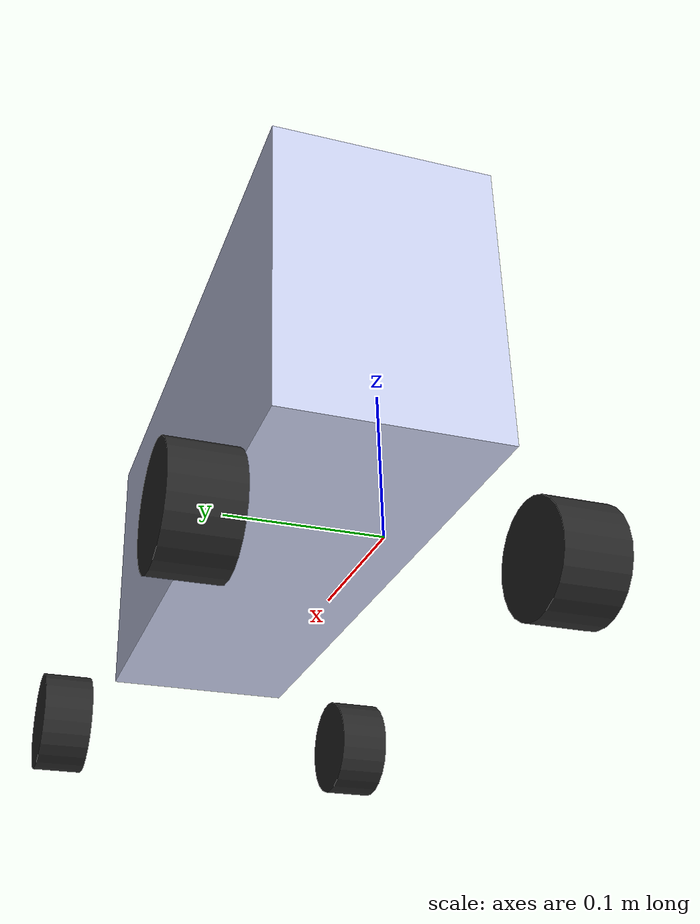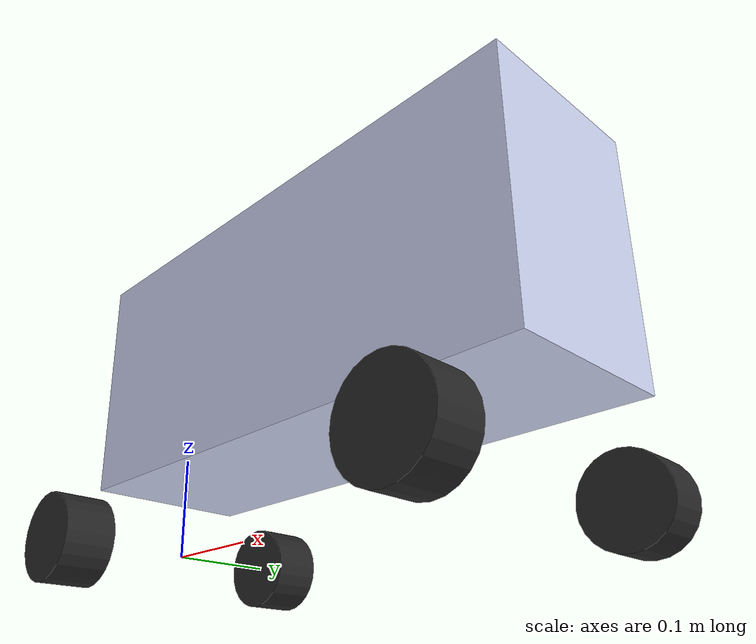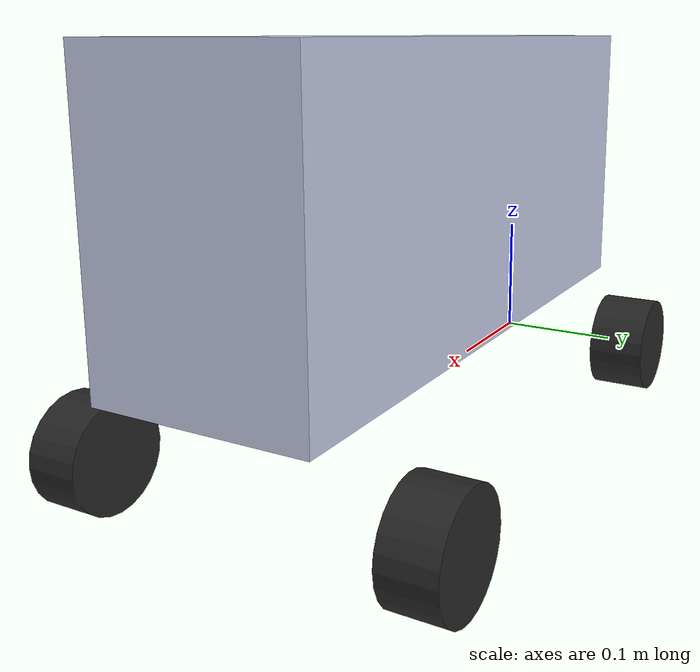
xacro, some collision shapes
<?xml version="1.0" encoding="utf-8"?>
<!-- This URDF was automatically created by SolidWorks to URDF Exporter and then extended for ROS/Gazebo simulation. -->
<robot name="R1" xmlns:xacro="http://www.ros.org/wiki/xacro">
  <xacro:arg name="controllers_file" default="$(find zebrat)/config/r1_ros2_control.yaml" />
  <link name="base_link">
    <inertial>
      <origin xyz="0.21879978611665 0.0 0.12" rpy="0 0 0" />
      <mass value="38.0603057004842" />
      <inertia
        ixx="0.70"
        ixy="0.0"
        ixz="0.0"
        iyy="1.10"
        iyz="0.0"
        izz="0.95" />
    </inertial>
    <visual>
      <origin xyz="0.19879978611665 0 0" rpy="0 0 3.14159265359" />
      <geometry>
        <mesh filename="package://zebrat/urdf/meshes/base_link.stl" />
      </geometry>
      <material name="">
        <color rgba="0.792156862745098 0.819607843137255 0.933333333333333 1" />
      </material>
    </visual>
    <collision>
      <origin xyz="0.21879978611665 0 0.17" rpy="0 0 0" />
      <geometry>
        <box size="0.50 0.16 0.22" />
      </geometry>
    </collision>
  </link>

  <link name="front_left_steering_link">
    <inertial>
      <origin xyz="0 0 -0.020375" rpy="0 0 0" />
      <mass value="0.30" />
      <inertia ixx="2e-4" ixy="0" ixz="0" iyy="2e-4" iyz="0" izz="2e-4" />
    </inertial>
  </link>

  <link name="front_right_steering_link">
    <inertial>
      <origin xyz="0 0 -0.020375" rpy="0 0 0" />
      <mass value="0.30" />
      <inertia ixx="2e-4" ixy="0" ixz="0" iyy="2e-4" iyz="0" izz="2e-4" />
    </inertial>
  </link>

  <link name="Empty_Link1">
    <inertial>
      <origin xyz="0 0 0" rpy="0 0 0" />
      <mass value="0.102007563940439" />
      <inertia
        ixx="6.03197633111551E-05"
        ixy="-1.09650777535302E-10"
        ixz="7.71132214702415E-10"
        iyy="9.37857965039355E-05"
        iyz="9.81331506021422E-10"
        izz="6.03194335121187E-05" />
    </inertial>
    <visual>
      <origin xyz="0 0 0" rpy="1.57079632679 0 0" />
      <geometry>
        <cylinder radius="0.04075" length="0.040" />
      </geometry>
      <material name="">
        <color rgba="0.152941176470588 0.152941176470588 0.152941176470588 1" />
      </material>
    </visual>
    <collision>
      <origin xyz="0 0 0" rpy="1.57079632679 0 0" />
      <geometry>
        <cylinder radius="0.04075" length="0.040" />
      </geometry>
    </collision>
  </link>

  <joint name="front_left_steering_joint" type="revolute">
    <origin xyz="0.418927695976663 0.132310316479216 0.04075" rpy="0 0 0" />
    <parent link="base_link" />
    <child link="front_left_steering_link" />
    <axis xyz="0 0 1" />
    <limit lower="-0.6" upper="0.6" effort="30" velocity="4" />
    <dynamics damping="3.0" friction="0.2" />
  </joint>

  <joint name="front_left_wheel_joint" type="continuous">
    <origin xyz="0 0 -0.04075" rpy="0 0 0" />
    <parent link="front_left_steering_link" />
    <child link="Empty_Link1" />
    <axis xyz="0 1 0" />
    <limit effort="30" velocity="60" />
    <dynamics damping="0.02" friction="0.0" />
  </joint>

  <link name="Empty_Link2">
    <inertial>
      <origin xyz="0 0 0" rpy="0 0 0" />
      <mass value="0.102007476255524" />
      <inertia
        ixx="6.03196775650763E-05"
        ixy="-1.30454716001587E-10"
        ixz="8.2130239199344E-10"
        iyy="9.37857280988688E-05"
        iyz="9.77509097955072E-10"
        izz="6.03194264639649E-05" />
    </inertial>
    <visual>
      <origin xyz="0 0 0" rpy="1.57079632679 0 0" />
      <geometry>
        <cylinder radius="0.04075" length="0.040" />
      </geometry>
      <material name="">
        <color rgba="0.152941176470588 0.152941176470588 0.152941176470588 1" />
      </material>
    </visual>
    <collision>
      <origin xyz="0 0 0" rpy="1.57079632679 0 0" />
      <geometry>
        <cylinder radius="0.04075" length="0.040" />
      </geometry>
    </collision>
  </link>

  <joint name="front_right_steering_joint" type="revolute">
    <origin xyz="0.418927695976663 -0.132310316479216 0.04075" rpy="0 0 0" />
    <parent link="base_link" />
    <child link="front_right_steering_link" />
    <axis xyz="0 0 1" />
    <limit lower="-0.6" upper="0.6" effort="30" velocity="4" />
    <dynamics damping="3.0" friction="0.2" />
  </joint>

  <joint name="front_right_wheel_joint" type="continuous">
    <origin xyz="0 0 -0.04075" rpy="0 0 0" />
    <parent link="front_right_steering_link" />
    <child link="Empty_Link2" />
    <axis xyz="0 -1 0" />
    <limit effort="30" velocity="60" />
    <dynamics damping="0.02" friction="0.0" />
  </joint>

  <link name="Empty_Link3">
    <inertial>
      <origin xyz="3.76217621722574E-07 -0.00343116064614217 1.77734477486638E-07" rpy="0 0 0" />
      <mass value="0.130385211409052" />
      <inertia
        ixx="7.86812106003073E-05"
        ixy="5.53858346756479E-11"
        ixz="9.23581794342341E-08"
        iyy="0.000108048071855382"
        iyz="-1.15152881530515E-10"
        izz="7.82862361574103E-05" />
    </inertial>
    <visual>
      <origin xyz="0 -0.0010 0" rpy="1.57079632679 0 0" />
      <geometry>
        <cylinder radius="0.04075" length="0.0465" />
      </geometry>
      <material name="">
        <color rgba="0.152941176470588 0.152941176470588 0.152941176470588 1" />
      </material>
    </visual>
    <collision>
      <origin xyz="0 -0.0010 0" rpy="1.57079632679 0 0" />
      <geometry>
        <cylinder radius="0.04075" length="0.0465" />
      </geometry>
    </collision>
  </link>

  <joint name="rear_right_wheel_joint" type="continuous">
    <origin xyz="0.0 -0.120910316479219 0.0" rpy="0 0 0" />
    <parent link="base_link" />
    <child link="Empty_Link3" />
    <axis xyz="0 -1 0" />
    <limit effort="20" velocity="20" />
    <dynamics damping="0.02" friction="0.0" />
  </joint>

  <link name="Empty_Link4">
    <inertial>
      <origin xyz="3.64091904681008E-07 0.000181544843160394 3.71723492477368E-07" rpy="0 0 0" />
      <mass value="0.130386181839137" />
      <inertia
        ixx="7.86817593166718E-05"
        ixy="7.73070482159629E-11"
        ixz="9.25265700656962E-08"
        iyy="0.00010804820646223"
        iyz="-1.16088106414147E-10"
        izz="7.82861601090754E-05" />
    </inertial>
    <visual>
      <origin xyz="0 -0.0020 0" rpy="1.57079632679 0 0" />
      <geometry>
        <cylinder radius="0.04075" length="0.0465" />
      </geometry>
      <material name="">
        <color rgba="0.152941176470588 0.152941176470588 0.152941176470588 1" />
      </material>
    </visual>
    <collision>
      <origin xyz="0 -0.0020 0" rpy="1.57079632679 0 0" />
      <geometry>
        <cylinder radius="0.04075" length="0.0465" />
      </geometry>
    </collision>
  </link>

  <joint name="rear_left_wheel_joint" type="continuous">
    <origin xyz="0.0 0.120910316479219 0.0" rpy="0 0 0" />
    <parent link="base_link" />
    <child link="Empty_Link4" />
    <axis xyz="0 1 0" />
    <limit effort="20" velocity="20" />
    <dynamics damping="0.02" friction="0.0" />
  </joint>

  <link name="imu_link">
    <inertial>
      <origin xyz="0 0 0" rpy="0 0 0" />
      <mass value="0.01" />
      <inertia ixx="1e-5" ixy="0" ixz="0" iyy="1e-5" iyz="0" izz="1e-5" />
    </inertial>
  </link>

  <joint name="imu_joint" type="fixed">
    <origin xyz="0.21879978611665 0 0.22" rpy="0 0 0" />
    <parent link="base_link" />
    <child link="imu_link" />
  </joint>

  <link name="laser_link">
    <inertial>
      <origin xyz="0 0 0" rpy="0 0 0" />
      <mass value="0.05" />
      <inertia ixx="2e-5" ixy="0" ixz="0" iyy="2e-5" iyz="0" izz="2e-5" />
    </inertial>
  </link>

  <joint name="laser_joint" type="fixed">
    <origin xyz="0.62 0 0.55" rpy="0 0 0" />
    <parent link="base_link" />
    <child link="laser_link" />
  </joint>

  <link name="camera_link">
    <inertial>
      <origin xyz="0 0 0" rpy="0 0 0" />
      <mass value="0.05" />
      <inertia ixx="2e-5" ixy="0" ixz="0" iyy="2e-5" iyz="0" izz="2e-5" />
    </inertial>
  </link>

  <joint name="camera_joint" type="fixed">
    <origin xyz="0.49879978611665 0 0.28" rpy="0 0 0" />
    <parent link="base_link" />
    <child link="camera_link" />
  </joint>

  <link name="camera_optical_link" />

  <joint name="camera_optical_joint" type="fixed">
    <origin xyz="0 0 0" rpy="-1.57079632679 0 -1.57079632679" />
    <parent link="camera_link" />
    <child link="camera_optical_link" />
  </joint>

  <gazebo reference="base_link">
    <material>Gazebo/White</material>
    <mu1>0.8</mu1>
    <mu2>0.8</mu2>
    <slip1>0.10</slip1>
    <slip2>0.10</slip2>
    <kp>30000.0</kp>
    <kd>5.0</kd>
  </gazebo>

  <gazebo reference="front_left_steering_link">
    <material>Gazebo/Black</material>
  </gazebo>

  <gazebo reference="front_right_steering_link">
    <material>Gazebo/Black</material>
  </gazebo>

  <gazebo reference="Empty_Link1">
    <material>Gazebo/Black</material>
    <mu1>4.0</mu1>
    <mu2>4.0</mu2>
    <fdir1>1 0 0</fdir1>
    <slip1>0.05</slip1>
    <slip2>0.05</slip2>
    <kp>50000.0</kp>
    <kd>5.0</kd>
  </gazebo>

  <gazebo reference="Empty_Link2">
    <material>Gazebo/Black</material>
    <mu1>4.0</mu1>
    <mu2>4.0</mu2>
    <fdir1>1 0 0</fdir1>
    <slip1>0.05</slip1>
    <slip2>0.05</slip2>
    <kp>50000.0</kp>
    <kd>5.0</kd>
  </gazebo>

  <gazebo reference="Empty_Link3">
    <material>Gazebo/Black</material>
    <mu1>4.0</mu1>
    <mu2>4.0</mu2>
    <fdir1>1 0 0</fdir1>
    <slip1>0.05</slip1>
    <slip2>0.05</slip2>
    <kp>50000.0</kp>
    <kd>5.0</kd>
  </gazebo>

  <gazebo reference="Empty_Link4">
    <material>Gazebo/Black</material>
    <mu1>4.0</mu1>
    <mu2>4.0</mu2>
    <fdir1>1 0 0</fdir1>
    <slip1>0.05</slip1>
    <slip2>0.05</slip2>
    <kp>50000.0</kp>
    <kd>5.0</kd>
  </gazebo>

  <gazebo reference="laser_link">
    <sensor name="front_laser" type="gpu_lidar">
      <always_on>true</always_on>
      <update_rate>15.0</update_rate>
      <visualize>true</visualize>
      <topic>/scan</topic>
      <pose>0 0 0 0 0 0</pose>
      <lidar>
        <scan>
          <horizontal>
            <samples>1080</samples>
            <resolution>1</resolution>
            <min_angle>-3.14159</min_angle>
            <max_angle>3.14159</max_angle>
          </horizontal>
        </scan>
        <range>
          <min>0.18</min>
          <max>8.0</max>
          <resolution>0.01</resolution>
        </range>
        <noise>
          <type>gaussian</type>
          <mean>0.0</mean>
            <stddev>0.01</stddev>
          </noise>
      </lidar>
    </sensor>
  </gazebo>

  <gazebo reference="imu_link">
    <sensor name="imu_sensor" type="imu">
      <always_on>true</always_on>
      <update_rate>50.0</update_rate>
      <topic>/imu/data</topic>
    </sensor>
  </gazebo>

  <gazebo reference="camera_link">
    <sensor name="front_rgb_camera" type="camera">
      <always_on>true</always_on>
      <update_rate>15.0</update_rate>
      <visualize>false</visualize>
      <topic>/camera/rgb/image_raw</topic>
      <camera>
        <camera_info_topic>/camera/rgb/camera_info</camera_info_topic>
        <horizontal_fov>1.3962634</horizontal_fov>
        <image>
          <width>640</width>
          <height>480</height>
          <format>R8G8B8</format>
        </image>
        <clip>
          <near>0.05</near>
          <far>20.0</far>
        </clip>
      </camera>
    </sensor>
    <sensor name="front_camera" type="depth_camera">
      <always_on>true</always_on>
      <update_rate>15.0</update_rate>
      <visualize>false</visualize>
      <topic>/camera/depth/image_raw</topic>
      <camera>
        <camera_info_topic>/camera/camera_info</camera_info_topic>
        <horizontal_fov>1.3962634</horizontal_fov>
        <image>
          <width>640</width>
          <height>480</height>
          <format>R_FLOAT32</format>
        </image>
        <clip>
          <near>0.05</near>
          <far>20.0</far>
        </clip>
      </camera>
    </sensor>
  </gazebo>

  <transmission name="front_left_steering_transmission">
    <type>transmission_interface/SimpleTransmission</type>
    <joint name="front_left_steering_joint">
      <hardwareInterface>hardware_interface/PositionJointInterface</hardwareInterface>
    </joint>
    <actuator name="front_left_steering_motor">
      <mechanicalReduction>1</mechanicalReduction>
      <hardwareInterface>hardware_interface/PositionJointInterface</hardwareInterface>
    </actuator>
  </transmission>

  <transmission name="front_right_steering_transmission">
    <type>transmission_interface/SimpleTransmission</type>
    <joint name="front_right_steering_joint">
      <hardwareInterface>hardware_interface/PositionJointInterface</hardwareInterface>
    </joint>
    <actuator name="front_right_steering_motor">
      <mechanicalReduction>1</mechanicalReduction>
      <hardwareInterface>hardware_interface/PositionJointInterface</hardwareInterface>
    </actuator>
  </transmission>

  <transmission name="front_left_wheel_transmission">
    <type>transmission_interface/SimpleTransmission</type>
    <joint name="front_left_wheel_joint">
      <hardwareInterface>hardware_interface/VelocityJointInterface</hardwareInterface>
    </joint>
    <actuator name="front_left_wheel_motor">
      <mechanicalReduction>1</mechanicalReduction>
      <hardwareInterface>hardware_interface/VelocityJointInterface</hardwareInterface>
    </actuator>
  </transmission>

  <transmission name="front_right_wheel_transmission">
    <type>transmission_interface/SimpleTransmission</type>
    <joint name="front_right_wheel_joint">
      <hardwareInterface>hardware_interface/VelocityJointInterface</hardwareInterface>
    </joint>
    <actuator name="front_right_wheel_motor">
      <mechanicalReduction>1</mechanicalReduction>
      <hardwareInterface>hardware_interface/VelocityJointInterface</hardwareInterface>
    </actuator>
  </transmission>

  <transmission name="rear_left_wheel_transmission">
    <type>transmission_interface/SimpleTransmission</type>
    <joint name="rear_left_wheel_joint">
      <hardwareInterface>hardware_interface/EffortJointInterface</hardwareInterface>
    </joint>
    <actuator name="rear_left_wheel_passive">
      <mechanicalReduction>1</mechanicalReduction>
      <hardwareInterface>hardware_interface/EffortJointInterface</hardwareInterface>
    </actuator>
  </transmission>

  <transmission name="rear_right_wheel_transmission">
    <type>transmission_interface/SimpleTransmission</type>
    <joint name="rear_right_wheel_joint">
      <hardwareInterface>hardware_interface/EffortJointInterface</hardwareInterface>
    </joint>
    <actuator name="rear_right_wheel_passive">
      <mechanicalReduction>1</mechanicalReduction>
      <hardwareInterface>hardware_interface/EffortJointInterface</hardwareInterface>
    </actuator>
  </transmission>

  <ros2_control name="R1GazeboSystem" type="system">
    <hardware>
      <plugin>gz_ros2_control/GazeboSimSystem</plugin>
    </hardware>
    <joint name="front_left_steering_joint">
      <command_interface name="position">
        <param name="min">-0.6</param>
        <param name="max">0.6</param>
      </command_interface>
      <state_interface name="position" />
      <state_interface name="velocity" />
    </joint>
    <joint name="front_right_steering_joint">
      <command_interface name="position">
        <param name="min">-0.6</param>
        <param name="max">0.6</param>
      </command_interface>
      <state_interface name="position" />
      <state_interface name="velocity" />
    </joint>
    <joint name="front_left_wheel_joint">
      <command_interface name="velocity" />
      <state_interface name="position" />
      <state_interface name="velocity" />
    </joint>
    <joint name="front_right_wheel_joint">
      <command_interface name="velocity" />
      <state_interface name="position" />
      <state_interface name="velocity" />
    </joint>
    <joint name="rear_left_wheel_joint">
      <state_interface name="position" />
      <state_interface name="velocity" />
    </joint>
    <joint name="rear_right_wheel_joint">
      <state_interface name="position" />
      <state_interface name="velocity" />
    </joint>
  </ros2_control>

  <gazebo>
    <plugin filename="libgz_ros2_control-system.so" name="gz_ros2_control::GazeboSimROS2ControlPlugin">
      <parameters>$(arg controllers_file)</parameters>
    </plugin>
  </gazebo>
</robot>
